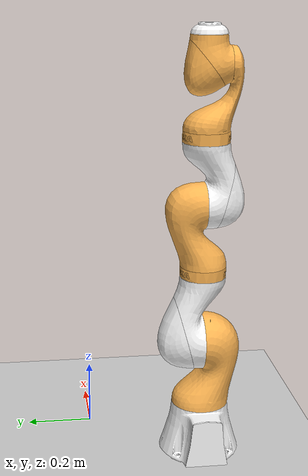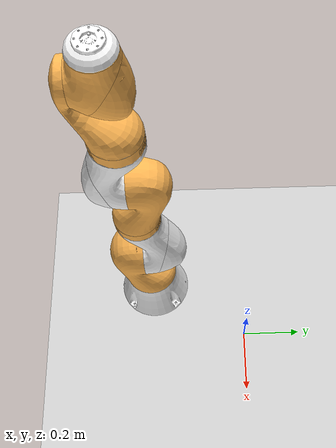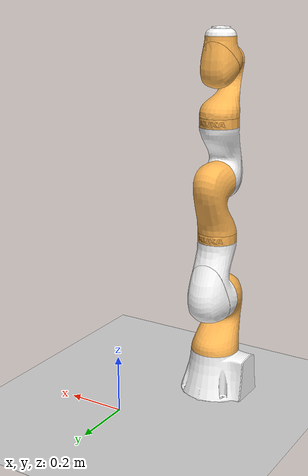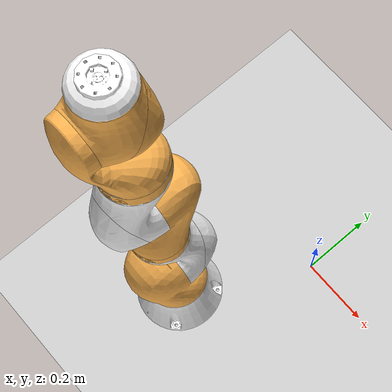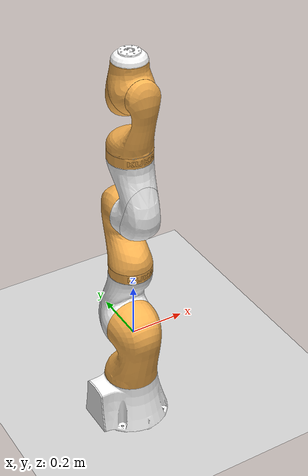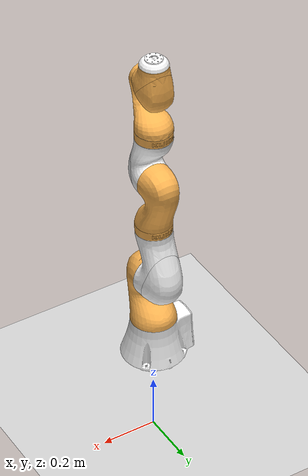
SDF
<sdf version='1.11'>
    <world name="r820_world">

        <physics type="ode">
            <max_step_size>0.002</max_step_size>
            <real_time_factor>1.0</real_time_factor>
            <real_time_update_rate>500</real_time_update_rate>
        </physics>
        <plugin name='gz::sim::systems::Physics' filename='gz-sim-physics-system'/>
        <plugin filename="gz-sim-scene-broadcaster-system"  name="gz::sim::systems::SceneBroadcaster"/>
        <plugin filename="gz-sim-user-commands-system" name="gz::sim::systems::UserCommands"/>

        <light type="directional" name="sun">
            <cast_shadows>true</cast_shadows>
            <pose>0 0 5 0 0 0</pose>
            <diffuse>0.8 0.8 0.8 1</diffuse>
            <specular>0.2 0.2 0.2 1</specular>
            <direction>-0.5 -0.1 -0.9</direction>
            <intensity>2.0</intensity>
        </light>

<model name="ground_plane">
          <static>true</static>
          <link name="link">
            <collision name="collision">
              <geometry>
                <plane>
                  <normal>0 0 1</normal>
                  <size>100 100</size>
                </plane>
              </geometry>
            </collision>
            <visual name="visual">
              <geometry>
                <plane>
                  <normal>0 0 1</normal>
                  <size>100 100</size>
                </plane>
              </geometry>
              <material>
                <ambient>0.8 0.8 0.8 1</ambient>
                <diffuse>0.8 0.8 0.8 1</diffuse>
                <specular>0.8 0.8 0.8 1</specular>
              </material>
            </visual>
          </link>
        </model>

        <model name="r820">

            <include>
                <name>r820_position_controller</name>
                <static>false</static>
                <uri>model://iiwa_position_controller.sdf</uri>
            </include>

            <joint name='base_joint' type='fixed'>
                <pose relative_to='__model__'>0 0 0 0 0 0</pose>
                <parent>world</parent>
                <child>r820_position_controller::r820::robot_base</child>
            </joint>

        </model>

    </world>
</sdf>

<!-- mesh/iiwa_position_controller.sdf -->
<sdf version='1.11'>

    <model name="r820_position_controller">

    <include>
        <name>r820</name>
        <static>false</static>
        <uri>model://iiwa.sdf</uri>

        <plugin
        filename="gz-sim-joint-position-controller-system"
        name="gz::sim::systems::JointPositionController">
            <joint_name>joint</joint_name>
            <use_velocity_commands>True</use_velocity_commands>
            <cmd_max>0.25</cmd_max>
        </plugin>

        <plugin
        filename="gz-sim-joint-position-controller-system"
        name="gz::sim::systems::JointPositionController">
            <joint_name>joint_2</joint_name>
            <use_velocity_commands>True</use_velocity_commands>
            <cmd_max>0.25</cmd_max>
        </plugin>

        <plugin
        filename="gz-sim-joint-position-controller-system"
        name="gz::sim::systems::JointPositionController">
            <joint_name>joint_3</joint_name>
            <use_velocity_commands>True</use_velocity_commands>
            <cmd_max>0.25</cmd_max>
        </plugin>

        <plugin
        filename="gz-sim-joint-position-controller-system"
        name="gz::sim::systems::JointPositionController">
            <joint_name>joint_4</joint_name>
            <use_velocity_commands>True</use_velocity_commands>
            <cmd_max>0.25</cmd_max>
        </plugin>

        <plugin
        filename="gz-sim-joint-position-controller-system"
        name="gz::sim::systems::JointPositionController">
            <joint_name>joint_5</joint_name>
            <use_velocity_commands>True</use_velocity_commands>
            <cmd_max>0.25</cmd_max>
        </plugin>

        <plugin
        filename="gz-sim-joint-position-controller-system"
        name="gz::sim::systems::JointPositionController">
            <joint_name>joint_6</joint_name>
            <use_velocity_commands>True</use_velocity_commands>
            <cmd_max>0.25</cmd_max>
        </plugin>

        <plugin
        filename="gz-sim-joint-state-publisher-system"
        name="gz::sim::systems::JointStatePublisher">
        </plugin>

    </include>

    </model>

</sdf>

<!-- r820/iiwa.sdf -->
<sdf version='1.11'>
  <model name='r820'>

    <link name='robot_base'>
      <inertial>
        <pose>0 0 0 0 0 0</pose>
        <mass>2</mass>
        <inertia>
          <ixx>0.061949499980467997</ixx>
          <ixy>-4.2022489491937001e-06</ixy>
          <ixz>3.5043295529543e-05</ixz>
          <iyy>0.062637049123665994</iyy>
          <iyz>0.0075376077254162999</iyz>
          <izz>0.029407721075839</izz>
        </inertia>
      </inertial>
      <collision name='robot_base_fixed_joint_lump__LBRiiwa14R820_collision'>
        <pose>-0.207261 -0.32505400000000001 0.078662999999999997 -3.4641020661940041e-07 -3.4641020661940057e-07 -3.4641020661940041e-07</pose>
        <geometry>
          <mesh>
            <scale>1 1 1</scale>
            <uri>model://mesh/iiwa_robot_base_coll_1.obj</uri>
          </mesh>
        </geometry>
      </collision>
      <collision name='robot_base_fixed_joint_lump__LBRiiwa14R820_collision_1'>
        <pose>-0.207261 -0.32505400000000001 0.078662999999999997 -3.4641020661940041e-07 -3.4641020661940057e-07 -3.4641020661940041e-07</pose>
        <geometry>
          <mesh>
            <scale>1 1 1</scale>
            <uri>model://mesh/iiwa_robot_base_coll_2.obj</uri>
          </mesh>
        </geometry>
      </collision>
      <collision name='robot_base_fixed_joint_lump__LBRiiwa14R820_collision_2'>
        <pose>-0.207261 -0.32505400000000001 0.078662999999999997 -3.4641020661940041e-07 -3.4641020661940057e-07 -3.4641020661940041e-07</pose>
        <geometry>
          <mesh>
            <scale>1 1 1</scale>
            <uri>model://mesh/iiwa_robot_base_coll_3.obj</uri>
          </mesh>
        </geometry>
      </collision>
      <collision name='robot_base_fixed_joint_lump__LBRiiwa14R820_collision_3'>
        <pose>-0.207261 -0.32505400000000001 0.078662999999999997 -3.4641020661940041e-07 -3.4641020661940057e-07 -3.4641020661940041e-07</pose>
        <geometry>
          <mesh>
            <scale>1 1 1</scale>
            <uri>model://mesh/iiwa_robot_base_coll_4.obj</uri>
          </mesh>
        </geometry>
      </collision>
      <collision name='robot_base_fixed_joint_lump__LBRiiwa14R820_collision_4'>
        <pose>-0.207261 -0.32505400000000001 0.078662999999999997 -3.4641020661940041e-07 -3.4641020661940057e-07 -3.4641020661940041e-07</pose>
        <geometry>
          <mesh>
            <scale>1 1 1</scale>
            <uri>model://mesh/iiwa_robot_base_coll_5.obj</uri>
          </mesh>
        </geometry>
      </collision>
      <collision name='robot_base_fixed_joint_lump__LBRiiwa14R820_collision_5'>
        <pose>-0.207261 -0.32505400000000001 0.078662999999999997 -3.4641020661940041e-07 -3.4641020661940057e-07 -3.4641020661940041e-07</pose>
        <geometry>
          <mesh>
            <scale>1 1 1</scale>
            <uri>model://mesh/iiwa_robot_base_coll_6.obj</uri>
          </mesh>
        </geometry>
      </collision>
      <collision name='robot_base_fixed_joint_lump__LBRiiwa14R820_collision_6'>
        <pose>-0.207261 -0.32505400000000001 0.078662999999999997 -3.4641020661940041e-07 -3.4641020661940057e-07 -3.4641020661940041e-07</pose>
        <geometry>
          <mesh>
            <scale>1 1 1</scale>
            <uri>model://mesh/iiwa_robot_base_coll_7.obj</uri>
          </mesh>
        </geometry>
      </collision>
      <collision name='robot_base_fixed_joint_lump__LBRiiwa14R820_collision_7'>
        <pose>-0.207261 -0.32505400000000001 0.078662999999999997 -3.4641020661940041e-07 -3.4641020661940057e-07 -3.4641020661940041e-07</pose>
        <geometry>
          <mesh>
            <scale>1 1 1</scale>
            <uri>model://mesh/iiwa_robot_base_coll_8.obj</uri>
          </mesh>
        </geometry>
      </collision>
      <collision name='robot_base_fixed_joint_lump__LBRiiwa14R820_collision_8'>
        <pose>-0.207261 -0.32505400000000001 0.078662999999999997 -3.4641020661940041e-07 -3.4641020661940057e-07 -3.4641020661940041e-07</pose>
        <geometry>
          <mesh>
            <scale>1 1 1</scale>
            <uri>model://mesh/iiwa_robot_base_coll_9.obj</uri>
          </mesh>
        </geometry>
      </collision>
      <collision name='robot_base_fixed_joint_lump__LBRiiwa14R820_collision_9'>
        <pose>-0.207261 -0.32505400000000001 0.078662999999999997 -3.4641020661940041e-07 -3.4641020661940057e-07 -3.4641020661940041e-07</pose>
        <geometry>
          <mesh>
            <scale>1 1 1</scale>
            <uri>model://mesh/iiwa_robot_base_coll_10.obj</uri>
          </mesh>
        </geometry>
      </collision>
      <collision name='robot_base_fixed_joint_lump__LBRiiwa14R820_collision_10'>
        <pose>-0.207261 -0.32505400000000001 0.078662999999999997 -3.4641020661940041e-07 -3.4641020661940057e-07 -3.4641020661940041e-07</pose>
        <geometry>
          <mesh>
            <scale>1 1 1</scale>
            <uri>model://mesh/iiwa_robot_base_coll_11.obj</uri>
          </mesh>
        </geometry>
      </collision>
      <collision name='robot_base_fixed_joint_lump__LBRiiwa14R820_collision_11'>
        <pose>-0.207261 -0.32505400000000001 0.078662999999999997 -3.4641020661940041e-07 -3.4641020661940057e-07 -3.4641020661940041e-07</pose>
        <geometry>
          <mesh>
            <scale>1 1 1</scale>
            <uri>model://mesh/iiwa_robot_base_coll_12.obj</uri>
          </mesh>
        </geometry>
      </collision>
      <collision name='robot_base_fixed_joint_lump__LBRiiwa14R820_collision_12'>
        <pose>-0.207261 -0.32505400000000001 0.078662999999999997 -3.4641020661940041e-07 -3.4641020661940057e-07 -3.4641020661940041e-07</pose>
        <geometry>
          <mesh>
            <scale>1 1 1</scale>
            <uri>model://mesh/iiwa_robot_base_coll_13.obj</uri>
          </mesh>
        </geometry>
      </collision>
      <collision name='robot_base_fixed_joint_lump__LBRiiwa14R820_collision_13'>
        <pose>-0.207261 -0.32505400000000001 0.078662999999999997 -3.4641020661940041e-07 -3.4641020661940057e-07 -3.4641020661940041e-07</pose>
        <geometry>
          <mesh>
            <scale>1 1 1</scale>
            <uri>model://mesh/iiwa_robot_base_coll_14.obj</uri>
          </mesh>
        </geometry>
      </collision>
      <collision name='robot_base_fixed_joint_lump__LBRiiwa14R820_collision_14'>
        <pose>-0.207261 -0.32505400000000001 0.078662999999999997 -3.4641020661940041e-07 -3.4641020661940057e-07 -3.4641020661940041e-07</pose>
        <geometry>
          <mesh>
            <scale>1 1 1</scale>
            <uri>model://mesh/iiwa_robot_base_coll_15.obj</uri>
          </mesh>
        </geometry>
      </collision>
      <collision name='robot_base_fixed_joint_lump__LBRiiwa14R820_collision_15'>
        <pose>-0.207261 -0.32505400000000001 0.078662999999999997 -3.4641020661940041e-07 -3.4641020661940057e-07 -3.4641020661940041e-07</pose>
        <geometry>
          <mesh>
            <scale>1 1 1</scale>
            <uri>model://mesh/iiwa_robot_base_coll_16.obj</uri>
          </mesh>
        </geometry>
      </collision>
      <collision name='robot_base_fixed_joint_lump__LBRiiwa14R820_collision_16'>
        <pose>-0.207261 -0.32505400000000001 0.078662999999999997 -3.4641020661940041e-07 -3.4641020661940057e-07 -3.4641020661940041e-07</pose>
        <geometry>
          <mesh>
            <scale>1 1 1</scale>
            <uri>model://mesh/iiwa_robot_base_coll_17.obj</uri>
          </mesh>
        </geometry>
      </collision>
      <visual name='robot_base_fixed_joint_lump__link_visual'>
        <pose>-0.207292 -0.32500000000000001 0.078750000000000001 -3.4641020661940041e-07 -3.4641020661940057e-07 -3.4641020661940041e-07</pose>
        <geometry>
          <mesh>
            <scale>1 1 1</scale>
            <uri>model://mesh/iiwa_link_vis_1.obj</uri>
          </mesh>
        </geometry>
        <material>
          <diffuse>1 1 1 1</diffuse>
          <ambient>1 1 1 1</ambient>
        </material>
      </visual>
      <visual name='robot_base_fixed_joint_lump__link_visual_1'>
        <pose>-0.207292 -0.32500000000000001 0.078750000000000001 -3.4641020661940041e-07 -3.4641020661940057e-07 -3.4641020661940041e-07</pose>
        <geometry>
          <mesh>
            <scale>1 1 1</scale>
            <uri>model://mesh/iiwa_link_vis_2.obj</uri>
          </mesh>
        </geometry>
        <material>
          <diffuse>1 1 1 1</diffuse>
          <ambient>1 1 1 1</ambient>
        </material>
      </visual>
    </link>
    <joint name='joint' type='revolute'>
      <pose relative_to='robot_base'>-0.20000000000000001 -0.32500000000000001 0.1525 -3.4641020661940041e-07 -3.4641020661940057e-07 -3.4641020661940041e-07</pose>
      <parent>robot_base</parent>
      <child>link2_resp</child>
      <axis>
        <xyz>0 0 1</xyz>
        <limit>
          <lower>-2.9670596122742001</lower>
          <upper>2.9670596122742001</upper>
          <effort>176</effort>
          <velocity>1.9198621511459</velocity>
        </limit>
        <dynamics>
          <spring_reference>0</spring_reference>
          <spring_stiffness>0</spring_stiffness>
        </dynamics>
      </axis>
    </joint>
    <link name='link2_resp'>
      <pose relative_to='joint'>0 0 0 0 0 0</pose>
      <inertial>
        <pose>4.3999999999999999e-05 -0.022527999999999999 0.12831500000000001 -3.4641020661940041e-07 -3.4641020661940057e-07 -3.4641020661940041e-07</pose>
        <mass>2</mass>
        <inertia>
          <ixx>0.061949499980467997</ixx>
          <ixy>-4.2022489491937001e-06</ixy>
          <ixz>3.5043295529543e-05</ixz>
          <iyy>0.062637049123665994</iyy>
          <iyz>0.0075376077254162999</iyz>
          <izz>0.029407721075839</izz>
        </inertia>
      </inertial>
      <collision name='link2_resp_collision'>
        <pose>0.00014200000000000001 -0.015037 0.14860799999999999 -3.4641020661940041e-07 -3.4641020661940057e-07 -3.4641020661940041e-07</pose>
        <geometry>
          <mesh>
            <scale>1 1 1</scale>
            <uri>model://mesh/iiwa_link2_resp_coll_1.obj</uri>
          </mesh>
        </geometry>
      </collision>
      <collision name='link2_resp_collision_1'>
        <pose>0.00014200000000000001 -0.015037 0.14860799999999999 -3.4641020661940041e-07 -3.4641020661940057e-07 -3.4641020661940041e-07</pose>
        <geometry>
          <mesh>
            <scale>1 1 1</scale>
            <uri>model://mesh/iiwa_link2_resp_coll_2.obj</uri>
          </mesh>
        </geometry>
      </collision>
      <visual name='link2_resp_fixed_joint_lump__link_visual'>
        <pose>0 -0.015099 0.14890200000000001 -3.4641020661940041e-07 -3.4641020661940057e-07 -3.4641020661940041e-07</pose>
        <geometry>
          <mesh>
            <scale>1 1 1</scale>
            <uri>model://mesh/iiwa_link_2_vis_1.obj</uri>
          </mesh>
        </geometry>
        <material>
          <diffuse>1 0.713698745 0.325342476 1</diffuse>
          <ambient>1 0.713698745 0.325342476 1</ambient>
        </material>
      </visual>
    </link>
    <joint name='joint_2' type='revolute'>
      <pose relative_to='link2_resp'>0 0 0.20749999999999999 1.570796653589793 -3.4641020661940036e-07 3.1415926535897931</pose>
      <parent>link2_resp</parent>
      <child>link3_resp</child>
      <axis>
        <xyz>0 0 1</xyz>
        <limit>
          <lower>-2.094395160675</lower>
          <upper>2.094395160675</upper>
          <effort>176</effort>
          <velocity>1.9198621511459</velocity>
        </limit>
        <dynamics>
          <spring_reference>0</spring_reference>
          <spring_stiffness>0</spring_stiffness>
        </dynamics>
      </axis>
    </joint>
    <link name='link3_resp'>
      <pose relative_to='joint_2'>0 0 0 0 0 0</pose>
      <inertial>
        <pose>0.00038400000000000001 0.064676999999999998 0.031906999999999998 1.570796653589793 -3.4641020661940036e-07 3.1415926535897931</pose>
        <mass>2</mass>
        <inertia>
          <ixx>0.065480944205794006</ixx>
          <ixy>-5.5093983987736001e-05</ixy>
          <ixz>0.00010297341964241001</ixz>
          <iyy>0.064074811587275002</iyy>
          <iyz>0.0099419432019577994</iyz>
          <izz>0.027901361880772999</izz>
        </inertia>
      </inertial>
      <collision name='link3_resp_collision'>
        <pose>0.00059500000000000004 0.059485999999999997 0.032034 1.570796653589793 -3.4641020661940036e-07 3.1415926535897931</pose>
        <geometry>
          <mesh>
            <scale>1 1 1</scale>
            <uri>model://mesh/iiwa_link3_resp_coll_1.obj</uri>
          </mesh>
        </geometry>
      </collision>
      <collision name='link3_resp_collision_1'>
        <pose>0.00059500000000000004 0.059485999999999997 0.032034 1.570796653589793 -3.4641020661940036e-07 3.1415926535897931</pose>
        <geometry>
          <mesh>
            <scale>1 1 1</scale>
            <uri>model://mesh/iiwa_link3_resp_coll_2.obj</uri>
          </mesh>
        </geometry>
      </collision>
      <visual name='link3_resp_fixed_joint_lump__link_visual'>
        <pose>0.00043600000000000003 0.059508999999999999 0.032053999999999999 1.570796653589793 -3.4641020661940036e-07 3.1415926535897931</pose>
        <geometry>
          <mesh>
            <scale>1 1 1</scale>
            <uri>model://mesh/iiwa_link_3_vis_1.obj</uri>
          </mesh>
        </geometry>
        <material>
          <diffuse>1 1 1 1</diffuse>
          <ambient>1 1 1 1</ambient>
        </material>
      </visual>
      <visual name='link3_resp_fixed_joint_lump__link_visual_1'>
        <pose>0.00043600000000000003 0.059508999999999999 0.032053999999999999 1.570796653589793 -3.4641020661940036e-07 3.1415926535897931</pose>
        <geometry>
          <mesh>
            <scale>1 1 1</scale>
            <uri>model://mesh/iiwa_link_3_vis_2.obj</uri>
          </mesh>
        </geometry>
        <material>
          <diffuse>1 1 1 1</diffuse>
          <ambient>1 1 1 1</ambient>
        </material>
      </visual>
    </link>
    <joint name='joint_3' type='revolute'>
      <pose relative_to='link3_resp'>0 0.221 0 1.570796653589793 -3.4641020661940036e-07 3.1415926535897931</pose>
      <parent>link3_resp</parent>
      <child>link4_resp</child>
      <axis>
        <xyz>0 0 1</xyz>
        <limit>
          <lower>-2.9670596122742001</lower>
          <upper>2.9670596122742001</upper>
          <effort>100</effort>
          <velocity>2.2340214252471999</velocity>
        </limit>
        <dynamics>
          <spring_reference>0</spring_reference>
          <spring_stiffness>0</spring_stiffness>
        </dynamics>
      </axis>
    </joint>
    <link name='link4_resp'>
      <pose relative_to='joint_3'>0 0 0 0 0 0</pose>
      <inertial>
        <pose>-9.0000000000000002e-06 0.023397999999999999 0.112798 -3.4641020661940041e-07 -3.4641020661940057e-07 3.4641020661940041e-07</pose>
        <mass>2</mass>
        <inertia>
          <ixx>0.069628312223766003</ixx>
          <ixy>-1.4946658783049001e-05</ixy>
          <ixz>1.6690215523111999e-05</ixz>
          <iyy>0.066355727860679004</iyy>
          <iyz>-0.010164441111686</iyz>
          <izz>0.025493437364201</izz>
        </inertia>
      </inertial>
      <collision name='link4_resp_collision'>
        <pose>-3.4999999999999997e-05 0.023255000000000001 0.12531300000000001 -3.4641020661940041e-07 -3.4641020661940057e-07 3.4641020661940041e-07</pose>
        <geometry>
          <mesh>
            <scale>1 1 1</scale>
            <uri>model://mesh/iiwa_link4_resp_coll_1.obj</uri>
          </mesh>
        </geometry>
      </collision>
      <collision name='link4_resp_collision_1'>
        <pose>-3.4999999999999997e-05 0.023255000000000001 0.12531300000000001 -3.4641020661940041e-07 -3.4641020661940057e-07 3.4641020661940041e-07</pose>
        <geometry>
          <mesh>
            <scale>1 1 1</scale>
            <uri>model://mesh/iiwa_link4_resp_coll_2.obj</uri>
          </mesh>
        </geometry>
      </collision>
      <visual name='link4_resp_fixed_joint_lump__link_visual'>
        <pose>5.0000000000000004e-06 0.023139 0.125246 -3.4641020661940041e-07 -3.4641020661940057e-07 3.4641020661940041e-07</pose>
        <geometry>
          <mesh>
            <scale>1 1 1</scale>
            <uri>model://mesh/iiwa_link_4_vis_1.obj</uri>
          </mesh>
        </geometry>
        <material>
          <diffuse>1 0.713698745 0.325342476 1</diffuse>
          <ambient>1 0.713698745 0.325342476 1</ambient>
        </material>
      </visual>
      <visual name='link4_resp_fixed_joint_lump__link_visual_1'>
        <pose>5.0000000000000004e-06 0.023139 0.125246 -3.4641020661940041e-07 -3.4641020661940057e-07 3.4641020661940041e-07</pose>
        <geometry>
          <mesh>
            <scale>1 1 1</scale>
            <uri>model://mesh/iiwa_link_4_vis_2.obj</uri>
          </mesh>
        </geometry>
        <material>
          <diffuse>1 0.713698745 0.325342476 1</diffuse>
          <ambient>1 0.713698745 0.325342476 1</ambient>
        </material>
      </visual>
      <visual name='link4_resp_fixed_joint_lump__link_visual_2'>
        <pose>5.0000000000000004e-06 0.023139 0.125246 -3.4641020661940041e-07 -3.4641020661940057e-07 3.4641020661940041e-07</pose>
        <geometry>
          <mesh>
            <scale>1 1 1</scale>
            <uri>model://mesh/iiwa_link_4_vis_3.obj</uri>
          </mesh>
        </geometry>
        <material>
          <diffuse>1 0.713698745 0.325342476 1</diffuse>
          <ambient>1 0.713698745 0.325342476 1</ambient>
        </material>
      </visual>
    </link>
    <joint name='joint_4' type='revolute'>
      <pose relative_to='link4_resp'>0 0 0.19900000000000001 -1.5707956535897929 -3.4641020661940057e-07 3.1415926535897931</pose>
      <parent>link4_resp</parent>
      <child>link5_resp</child>
      <axis>
        <xyz>0 0 1</xyz>
        <limit>
          <lower>-2.094395160675</lower>
          <upper>2.094395160675</upper>
          <effort>100</effort>
          <velocity>2.2340214252471999</velocity>
        </limit>
        <dynamics>
          <spring_reference>0</spring_reference>
          <spring_stiffness>0</spring_stiffness>
        </dynamics>
      </axis>
    </joint>
    <link name='link5_resp'>
      <pose relative_to='joint_4'>0 0 0 0 0 0</pose>
      <inertial>
        <pose>0 -0.069988999999999996 0.025510999999999999 -1.5707956535897929 -3.4641020661940057e-07 3.1415926535897931</pose>
        <mass>2</mass>
        <inertia>
          <ixx>0.065627000638938005</ixx>
          <ixy>-3.0720793249862002e-06</ixy>
          <ixz>-1.4229045826541e-05</ixz>
          <iyy>0.062370498386876999</iyy>
          <iyz>-0.0095846156137264996</iyz>
          <izz>0.02849143762768</izz>
        </inertia>
      </inertial>
      <collision name='link5_resp_collision'>
        <pose>-0.00023000000000000001 -0.058243999999999997 0.023172000000000002 -1.5707956535897929 -3.4641020661940057e-07 3.1415926535897931</pose>
        <geometry>
          <mesh>
            <scale>1 1 1</scale>
            <uri>model://mesh/iiwa_link5_resp_coll_1.obj</uri>
          </mesh>
        </geometry>
      </collision>
      <collision name='link5_resp_collision_1'>
        <pose>-0.00023000000000000001 -0.058243999999999997 0.023172000000000002 -1.5707956535897929 -3.4641020661940057e-07 3.1415926535897931</pose>
        <geometry>
          <mesh>
            <scale>1 1 1</scale>
            <uri>model://mesh/iiwa_link5_resp_coll_2.obj</uri>
          </mesh>
        </geometry>
      </collision>
      <visual name='link5_resp_fixed_joint_lump__link_visual'>
        <pose>0 -0.058255000000000001 0.023238999999999999 -1.5707956535897929 -3.4641020661940057e-07 3.1415926535897931</pose>
        <geometry>
          <mesh>
            <scale>1 1 1</scale>
            <uri>model://mesh/iiwa_link_5_vis_1.obj</uri>
          </mesh>
        </geometry>
        <material>
          <diffuse>1 1 1 1</diffuse>
          <ambient>1 1 1 1</ambient>
        </material>
      </visual>
      <visual name='link5_resp_fixed_joint_lump__link_visual_1'>
        <pose>0 -0.058255000000000001 0.023238999999999999 -1.5707956535897929 -3.4641020661940057e-07 3.1415926535897931</pose>
        <geometry>
          <mesh>
            <scale>1 1 1</scale>
            <uri>model://mesh/iiwa_link_5_vis_2.obj</uri>
          </mesh>
        </geometry>
        <material>
          <diffuse>1 1 1 1</diffuse>
          <ambient>1 1 1 1</ambient>
        </material>
      </visual>
    </link>
    <joint name='joint_5' type='revolute'>
      <pose relative_to='link5_resp'>0 -0.17949999999999999 0 -1.5707956535897929 -3.4641020661940057e-07 3.1415926535897931</pose>
      <parent>link5_resp</parent>
      <child>link6_resp</child>
      <axis>
        <xyz>0 0 1</xyz>
        <limit>
          <lower>-2.9670596122742001</lower>
          <upper>2.9670596122742001</upper>
          <effort>100</effort>
          <velocity>3.5604715347289999</velocity>
        </limit>
        <dynamics>
          <spring_reference>0</spring_reference>
          <spring_stiffness>0</spring_stiffness>
        </dynamics>
      </axis>
    </joint>
    <link name='link6_resp'>
      <pose relative_to='joint_5'>0 0 0 0 0 0</pose>
      <inertial>
        <pose>-5.8e-05 -0.025083999999999999 0.105264 3.4641020661940041e-07 -3.4641020661940057e-07 3.4641020661940041e-07</pose>
        <mass>2</mass>
        <inertia>
          <ixx>0.070361056744539005</ixx>
          <ixy>1.4296320014811e-05</ixy>
          <ixz>-1.5400706466743e-06</ixz>
          <iyy>0.065353014054758005</iyy>
          <iyz>0.017439321283930002</iyz>
          <izz>0.028704240272089</izz>
        </inertia>
      </inertial>
      <collision name='link6_resp_collision'>
        <pose>0.00010399999999999999 -0.015498 0.138539 3.4641020661940041e-07 -3.4641020661940057e-07 3.4641020661940041e-07</pose>
        <geometry>
          <mesh>
            <scale>1 1 1</scale>
            <uri>model://mesh/iiwa_link6_resp_coll_1.obj</uri>
          </mesh>
        </geometry>
      </collision>
      <collision name='link6_resp_collision_1'>
        <pose>0.00010399999999999999 -0.015498 0.138539 3.4641020661940041e-07 -3.4641020661940057e-07 3.4641020661940041e-07</pose>
        <geometry>
          <mesh>
            <scale>1 1 1</scale>
            <uri>model://mesh/iiwa_link6_resp_coll_2.obj</uri>
          </mesh>
        </geometry>
      </collision>
      <collision name='link6_resp_collision_2'>
        <pose>0.00010399999999999999 -0.015498 0.138539 3.4641020661940041e-07 -3.4641020661940057e-07 3.4641020661940041e-07</pose>
        <geometry>
          <mesh>
            <scale>1 1 1</scale>
            <uri>model://mesh/iiwa_link6_resp_coll_3.obj</uri>
          </mesh>
        </geometry>
      </collision>
      <visual name='link6_resp_fixed_joint_lump__link_visual'>
        <pose>2.0999999999999999e-05 -0.015462 0.13850000000000001 3.4641020661940041e-07 -3.4641020661940057e-07 3.4641020661940041e-07</pose>
        <geometry>
          <mesh>
            <scale>1 1 1</scale>
            <uri>model://mesh/iiwa_link_6_vis_1.obj</uri>
          </mesh>
        </geometry>
        <material>
          <diffuse>1 0.713698745 0.325342476 1</diffuse>
          <ambient>1 0.713698745 0.325342476 1</ambient>
        </material>
      </visual>
      <visual name='link6_resp_fixed_joint_lump__link_visual_1'>
        <pose>2.0999999999999999e-05 -0.015462 0.13850000000000001 3.4641020661940041e-07 -3.4641020661940057e-07 3.4641020661940041e-07</pose>
        <geometry>
          <mesh>
            <scale>1 1 1</scale>
            <uri>model://mesh/iiwa_link_6_vis_2.obj</uri>
          </mesh>
        </geometry>
        <material>
          <diffuse>1 0.713698745 0.325342476 1</diffuse>
          <ambient>1 0.713698745 0.325342476 1</ambient>
        </material>
      </visual>
      <visual name='link6_resp_fixed_joint_lump__link_visual_2'>
        <pose>2.0999999999999999e-05 -0.015462 0.13850000000000001 3.4641020661940041e-07 -3.4641020661940057e-07 3.4641020661940041e-07</pose>
        <geometry>
          <mesh>
            <scale>1 1 1</scale>
            <uri>model://mesh/iiwa_link_6_vis_3.obj</uri>
          </mesh>
        </geometry>
        <material>
          <diffuse>1 0.713698745 0.325342476 1</diffuse>
          <ambient>1 0.713698745 0.325342476 1</ambient>
        </material>
      </visual>
    </link>
    <joint name='joint_6' type='revolute'>
      <pose relative_to='link6_resp'>0 -0.065699999999999995 0.2205 1.570796653589793 -3.4641020661940036e-07 3.1415926535897931</pose>
      <parent>link6_resp</parent>
      <child>link7_resp</child>
      <axis>
        <xyz>0 0 1</xyz>
        <limit>
          <lower>-2.094395160675</lower>
          <upper>2.094395160675</upper>
          <effort>38</effort>
          <velocity>3.2114057540893999</velocity>
        </limit>
        <dynamics>
          <spring_reference>0</spring_reference>
          <spring_stiffness>0</spring_stiffness>
        </dynamics>
      </axis>
    </joint>
    <link name='link7_resp'>
      <pose relative_to='joint_6'>0 0 0 0 0 0</pose>
      <inertial>
        <pose>-1.9999999999999999e-06 0.0030869999999999999 0.065833000000000003 1.570796653589793 -3.4641020661940036e-07 3.1415926535897931</pose>
        <mass>2</mass>
        <inertia>
          <ixx>0.054369928773880999</ixx>
          <ixy>-1.2216953536765e-05</ixy>
          <ixz>-1.0268024492953e-05</ixz>
          <iyy>0.052919941658458002</iyy>
          <iyz>0.0028934553396823999</iyz>
          <izz>0.038594863015146003</izz>
        </inertia>
      </inertial>
      <collision name='link7_resp_collision'>
        <pose>-0.00043399999999999998 -0.0026199999999999999 0.068751999999999994 1.570796653589793 -3.4641020661940036e-07 3.1415926535897931</pose>
        <geometry>
          <mesh>
            <scale>1 1 1</scale>
            <uri>model://mesh/iiwa_link7_resp_coll_1.obj</uri>
          </mesh>
        </geometry>
      </collision>
      <visual name='link7_resp_fixed_joint_lump__link_visual'>
        <pose>9.9999999999999995e-07 -0.002604 0.068806999999999993 1.570796653589793 -3.4641020661940036e-07 3.1415926535897931</pose>
        <geometry>
          <mesh>
            <scale>1 1 1</scale>
            <uri>model://mesh/iiwa_link_7_vis_1.obj</uri>
          </mesh>
        </geometry>
        <material>
          <diffuse>1 0.713698745 0.325342476 1</diffuse>
          <ambient>1 0.713698745 0.325342476 1</ambient>
        </material>
      </visual>
      <visual name='link7_resp_fixed_joint_lump__link_visual_1'>
        <pose>9.9999999999999995e-07 -0.002604 0.068806999999999993 1.570796653589793 -3.4641020661940036e-07 3.1415926535897931</pose>
        <geometry>
          <mesh>
            <scale>1 1 1</scale>
            <uri>model://mesh/iiwa_link_7_vis_2.obj</uri>
          </mesh>
        </geometry>
        <material>
          <diffuse>1 0.713698745 0.325342476 1</diffuse>
          <ambient>1 0.713698745 0.325342476 1</ambient>
        </material>
      </visual>
    </link>
    <joint name='joint_7' type='revolute'>
      <pose relative_to='link7_resp'>0 0.076100000000000001 0.065699999999999995 1.570796653589793 -3.4641020661940036e-07 3.1415926535897931</pose>
      <parent>link7_resp</parent>
      <child>link8_resp</child>
      <axis>
        <xyz>0 0 1</xyz>
        <limit>
          <lower>-3.0543260574340998</lower>
          <upper>3.0543260574340998</upper>
          <effort>38</effort>
          <velocity>3.2114057540893999</velocity>
        </limit>
        <dynamics>
          <spring_reference>0</spring_reference>
          <spring_stiffness>0</spring_stiffness>
        </dynamics>
      </axis>
    </joint>
    <link name='link8_resp'>
      <pose relative_to='joint_7'>0 0 0 0 0 0</pose>
      <inertial>
        <pose>0.00013799999999999999 -1.8e-05 0.017092 -3.4641020661940041e-07 -3.4641020661940057e-07 3.4641020661940041e-07</pose>
        <mass>1</mass>
        <inertia>
          <ixx>0.0066026421413774997</ixx>
          <ixy>1.5490255466962999e-05</ixy>
          <ixz>-5.5030304772895997e-06</ixz>
          <iyy>0.0066607662650792999</iyy>
          <iyz>-9.1508271951731007e-06</iyz>
          <izz>0.011642093361783</izz>
        </inertia>
      </inertial>
      <collision name='link8_resp_collision'>
        <pose>-0.00025599999999999999 0 0.019982 -3.4641020661940041e-07 -3.4641020661940057e-07 3.4641020661940041e-07</pose>
        <geometry>
          <mesh>
            <scale>1 1 1</scale>
            <uri>model://mesh/iiwa_link8_resp_coll_1.obj</uri>
          </mesh>
        </geometry>
      </collision>
      <collision name='link8_resp_collision_1'>
        <pose>-0.00025599999999999999 0 0.019982 -3.4641020661940041e-07 -3.4641020661940057e-07 3.4641020661940041e-07</pose>
        <geometry>
          <mesh>
            <scale>1 1 1</scale>
            <uri>model://mesh/iiwa_link8_resp_coll_2.obj</uri>
          </mesh>
        </geometry>
      </collision>
      <collision name='link8_resp_collision_2'>
        <pose>-0.00025599999999999999 0 0.019982 -3.4641020661940041e-07 -3.4641020661940057e-07 3.4641020661940041e-07</pose>
        <geometry>
          <mesh>
            <scale>1 1 1</scale>
            <uri>model://mesh/iiwa_link8_resp_coll_3.obj</uri>
          </mesh>
        </geometry>
      </collision>
      <visual name='link8_resp_fixed_joint_lump__link_visual'>
        <pose>-0.00035500000000000001 0 0.019949999999999999 -3.4641020661940041e-07 -3.4641020661940057e-07 3.4641020661940041e-07</pose>
        <geometry>
          <mesh>
            <scale>1 1 1</scale>
            <uri>model://mesh/iiwa_link_8_vis_1.obj</uri>
          </mesh>
        </geometry>
        <material>
          <diffuse>1 1 1 1</diffuse>
          <ambient>1 1 1 1</ambient>
        </material>
      </visual>
      <visual name='link8_resp_fixed_joint_lump__link_visual_1'>
        <pose>-0.00035500000000000001 0 0.019949999999999999 -3.4641020661940041e-07 -3.4641020661940057e-07 3.4641020661940041e-07</pose>
        <geometry>
          <mesh>
            <scale>1 1 1</scale>
            <uri>model://mesh/iiwa_link_8_vis_2.obj</uri>
          </mesh>
        </geometry>
        <material>
          <diffuse>1 1 1 1</diffuse>
          <ambient>1 1 1 1</ambient>
        </material>
      </visual>
    </link>
  </model>
</sdf>
